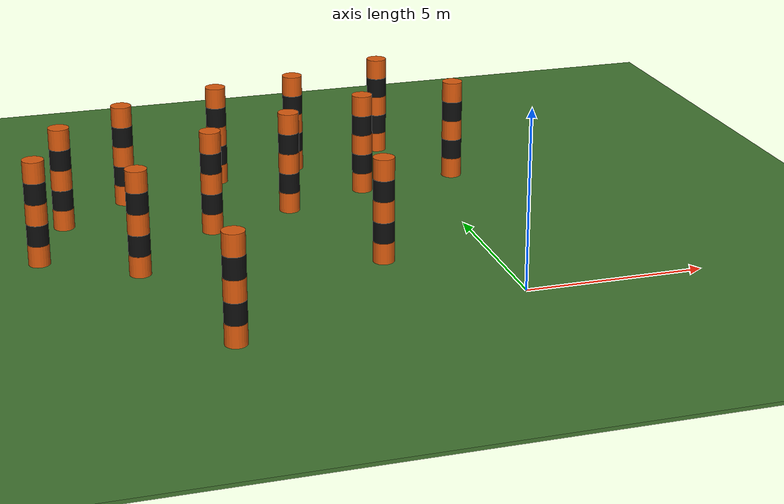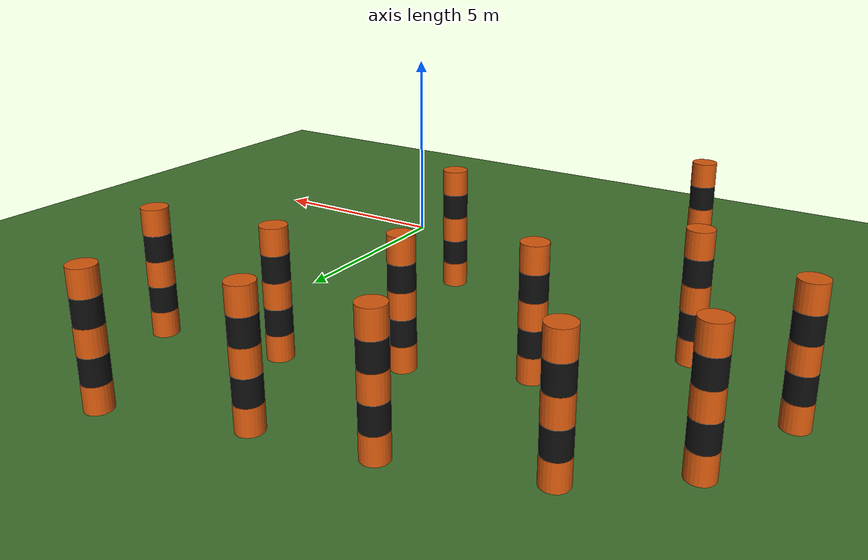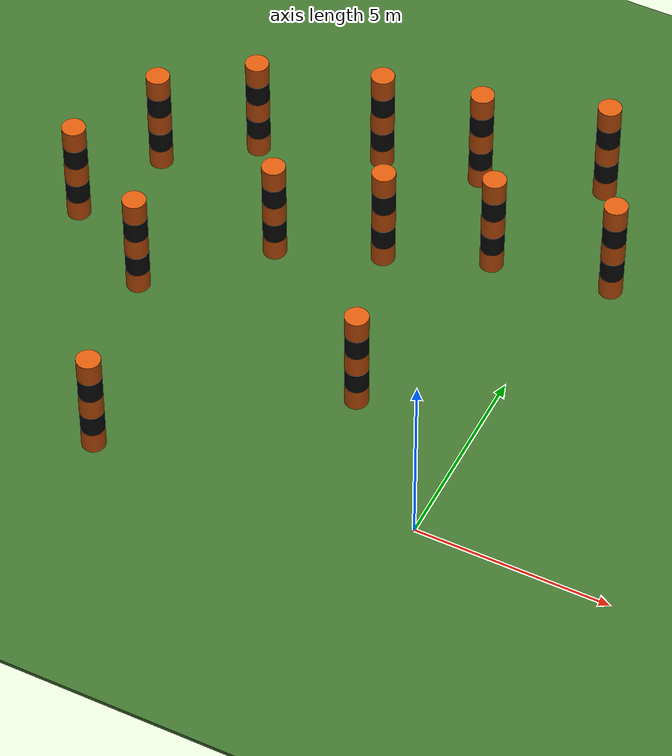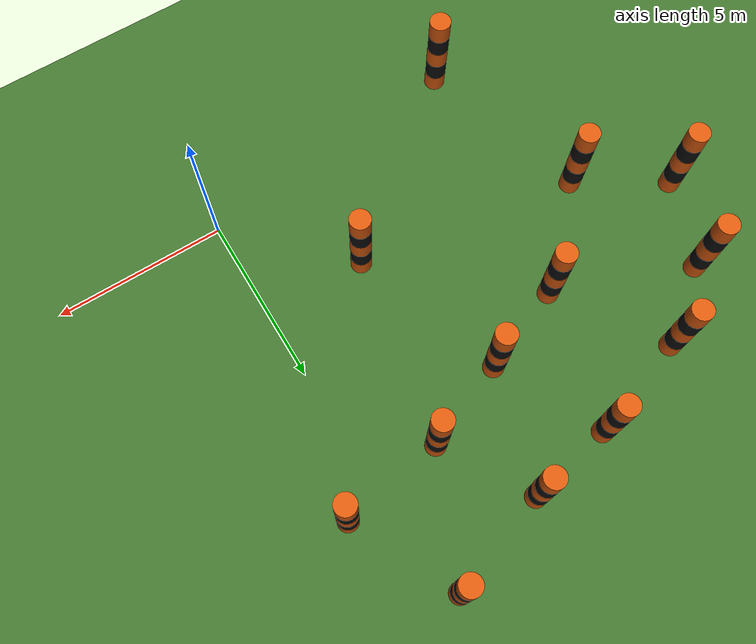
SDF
<sdf version="1.6">
 <world name="medium_forest_goal_13_10_striped_poles">
  <model name="ground">
   <static>1</static>
   <link name="link">
    <collision name="collision"><geometry><box><size>45 35 0.1</size></box></geometry></collision>
    <visual name="visual">
     <geometry><box><size>45 35 0.1</size></box></geometry>
     <material><ambient>0.25 0.45 0.18 1</ambient><diffuse>0.25 0.45 0.18 1</diffuse></material>
    </visual>
   </link>
   <pose>3 2 -0.05 0 0 0</pose>
  </model>
  <model name="striped_obs_01">
   <static>true</static>
   <pose>-12.000 5.500 0 0 0 0</pose>
   <link name="link">
    <collision name="collision">
     <pose>0 0 1.5 0 0 0</pose>
     <geometry><cylinder><radius>0.30</radius><length>3.0</length></cylinder></geometry>
     <surface>
      <contact><ode><kp>1000000</kp><kd>100</kd><max_vel>0.01</max_vel><min_depth>0.001</min_depth></ode></contact>
      <friction><ode><mu>1.0</mu><mu2>1.0</mu2></ode></friction>
     </surface>
    </collision>
    <visual name="band_1">
     <pose>0 0 0.3 0 0 0</pose>
     <geometry><cylinder><radius>0.30</radius><length>0.6</length></cylinder></geometry>
     <material>
      <ambient>0.85 0.35 0.05 1</ambient>
      <diffuse>0.85 0.35 0.05 1</diffuse>
      <specular>0.02 0.02 0.02 1</specular>
     </material>
    </visual>
    <visual name="band_2">
     <pose>0 0 0.9 0 0 0</pose>
     <geometry><cylinder><radius>0.30</radius><length>0.6</length></cylinder></geometry>
     <material>
      <ambient>0.05 0.05 0.05 1</ambient>
      <diffuse>0.05 0.05 0.05 1</diffuse>
      <specular>0.02 0.02 0.02 1</specular>
     </material>
    </visual>
    <visual name="band_3">
     <pose>0 0 1.5 0 0 0</pose>
     <geometry><cylinder><radius>0.30</radius><length>0.6</length></cylinder></geometry>
     <material>
      <ambient>0.85 0.35 0.05 1</ambient>
      <diffuse>0.85 0.35 0.05 1</diffuse>
      <specular>0.02 0.02 0.02 1</specular>
     </material>
    </visual>
    <visual name="band_4">
     <pose>0 0 2.1 0 0 0</pose>
     <geometry><cylinder><radius>0.30</radius><length>0.6</length></cylinder></geometry>
     <material>
      <ambient>0.05 0.05 0.05 1</ambient>
      <diffuse>0.05 0.05 0.05 1</diffuse>
      <specular>0.02 0.02 0.02 1</specular>
     </material>
    </visual>
    <visual name="band_5">
     <pose>0 0 2.7 0 0 0</pose>
     <geometry><cylinder><radius>0.30</radius><length>0.6</length></cylinder></geometry>
     <material>
      <ambient>0.85 0.35 0.05 1</ambient>
      <diffuse>0.85 0.35 0.05 1</diffuse>
      <specular>0.02 0.02 0.02 1</specular>
     </material>
    </visual>
   </link>
  </model>
  <model name="striped_obs_02">
   <static>true</static>
   <pose>-11.000 8.000 0 0 0 0</pose>
   <link name="link">
    <collision name="collision">
     <pose>0 0 1.5 0 0 0</pose>
     <geometry><cylinder><radius>0.30</radius><length>3.0</length></cylinder></geometry>
     <surface>
      <contact><ode><kp>1000000</kp><kd>100</kd><max_vel>0.01</max_vel><min_depth>0.001</min_depth></ode></contact>
      <friction><ode><mu>1.0</mu><mu2>1.0</mu2></ode></friction>
     </surface>
    </collision>
    <visual name="band_1">
     <pose>0 0 0.3 0 0 0</pose>
     <geometry><cylinder><radius>0.30</radius><length>0.6</length></cylinder></geometry>
     <material>
      <ambient>0.85 0.35 0.05 1</ambient>
      <diffuse>0.85 0.35 0.05 1</diffuse>
      <specular>0.02 0.02 0.02 1</specular>
     </material>
    </visual>
    <visual name="band_2">
     <pose>0 0 0.9 0 0 0</pose>
     <geometry><cylinder><radius>0.30</radius><length>0.6</length></cylinder></geometry>
     <material>
      <ambient>0.05 0.05 0.05 1</ambient>
      <diffuse>0.05 0.05 0.05 1</diffuse>
      <specular>0.02 0.02 0.02 1</specular>
     </material>
    </visual>
    <visual name="band_3">
     <pose>0 0 1.5 0 0 0</pose>
     <geometry><cylinder><radius>0.30</radius><length>0.6</length></cylinder></geometry>
     <material>
      <ambient>0.85 0.35 0.05 1</ambient>
      <diffuse>0.85 0.35 0.05 1</diffuse>
      <specular>0.02 0.02 0.02 1</specular>
     </material>
    </visual>
    <visual name="band_4">
     <pose>0 0 2.1 0 0 0</pose>
     <geometry><cylinder><radius>0.30</radius><length>0.6</length></cylinder></geometry>
     <material>
      <ambient>0.05 0.05 0.05 1</ambient>
      <diffuse>0.05 0.05 0.05 1</diffuse>
      <specular>0.02 0.02 0.02 1</specular>
     </material>
    </visual>
    <visual name="band_5">
     <pose>0 0 2.7 0 0 0</pose>
     <geometry><cylinder><radius>0.30</radius><length>0.6</length></cylinder></geometry>
     <material>
      <ambient>0.85 0.35 0.05 1</ambient>
      <diffuse>0.85 0.35 0.05 1</diffuse>
      <specular>0.02 0.02 0.02 1</specular>
     </material>
    </visual>
   </link>
  </model>
  <model name="striped_obs_03">
   <static>true</static>
   <pose>-9.500 4.000 0 0 0 0</pose>
   <link name="link">
    <collision name="collision">
     <pose>0 0 1.5 0 0 0</pose>
     <geometry><cylinder><radius>0.30</radius><length>3.0</length></cylinder></geometry>
     <surface>
      <contact><ode><kp>1000000</kp><kd>100</kd><max_vel>0.01</max_vel><min_depth>0.001</min_depth></ode></contact>
      <friction><ode><mu>1.0</mu><mu2>1.0</mu2></ode></friction>
     </surface>
    </collision>
    <visual name="band_1">
     <pose>0 0 0.3 0 0 0</pose>
     <geometry><cylinder><radius>0.30</radius><length>0.6</length></cylinder></geometry>
     <material>
      <ambient>0.85 0.35 0.05 1</ambient>
      <diffuse>0.85 0.35 0.05 1</diffuse>
      <specular>0.02 0.02 0.02 1</specular>
     </material>
    </visual>
    <visual name="band_2">
     <pose>0 0 0.9 0 0 0</pose>
     <geometry><cylinder><radius>0.30</radius><length>0.6</length></cylinder></geometry>
     <material>
      <ambient>0.05 0.05 0.05 1</ambient>
      <diffuse>0.05 0.05 0.05 1</diffuse>
      <specular>0.02 0.02 0.02 1</specular>
     </material>
    </visual>
    <visual name="band_3">
     <pose>0 0 1.5 0 0 0</pose>
     <geometry><cylinder><radius>0.30</radius><length>0.6</length></cylinder></geometry>
     <material>
      <ambient>0.85 0.35 0.05 1</ambient>
      <diffuse>0.85 0.35 0.05 1</diffuse>
      <specular>0.02 0.02 0.02 1</specular>
     </material>
    </visual>
    <visual name="band_4">
     <pose>0 0 2.1 0 0 0</pose>
     <geometry><cylinder><radius>0.30</radius><length>0.6</length></cylinder></geometry>
     <material>
      <ambient>0.05 0.05 0.05 1</ambient>
      <diffuse>0.05 0.05 0.05 1</diffuse>
      <specular>0.02 0.02 0.02 1</specular>
     </material>
    </visual>
    <visual name="band_5">
     <pose>0 0 2.7 0 0 0</pose>
     <geometry><cylinder><radius>0.30</radius><length>0.6</length></cylinder></geometry>
     <material>
      <ambient>0.85 0.35 0.05 1</ambient>
      <diffuse>0.85 0.35 0.05 1</diffuse>
      <specular>0.02 0.02 0.02 1</specular>
     </material>
    </visual>
   </link>
  </model>
  <model name="striped_obs_04">
   <static>true</static>
   <pose>-9.000 9.500 0 0 0 0</pose>
   <link name="link">
    <collision name="collision">
     <pose>0 0 1.5 0 0 0</pose>
     <geometry><cylinder><radius>0.30</radius><length>3.0</length></cylinder></geometry>
     <surface>
      <contact><ode><kp>1000000</kp><kd>100</kd><max_vel>0.01</max_vel><min_depth>0.001</min_depth></ode></contact>
      <friction><ode><mu>1.0</mu><mu2>1.0</mu2></ode></friction>
     </surface>
    </collision>
    <visual name="band_1">
     <pose>0 0 0.3 0 0 0</pose>
     <geometry><cylinder><radius>0.30</radius><length>0.6</length></cylinder></geometry>
     <material>
      <ambient>0.85 0.35 0.05 1</ambient>
      <diffuse>0.85 0.35 0.05 1</diffuse>
      <specular>0.02 0.02 0.02 1</specular>
     </material>
    </visual>
    <visual name="band_2">
     <pose>0 0 0.9 0 0 0</pose>
     <geometry><cylinder><radius>0.30</radius><length>0.6</length></cylinder></geometry>
     <material>
      <ambient>0.05 0.05 0.05 1</ambient>
      <diffuse>0.05 0.05 0.05 1</diffuse>
      <specular>0.02 0.02 0.02 1</specular>
     </material>
    </visual>
    <visual name="band_3">
     <pose>0 0 1.5 0 0 0</pose>
     <geometry><cylinder><radius>0.30</radius><length>0.6</length></cylinder></geometry>
     <material>
      <ambient>0.85 0.35 0.05 1</ambient>
      <diffuse>0.85 0.35 0.05 1</diffuse>
      <specular>0.02 0.02 0.02 1</specular>
     </material>
    </visual>
    <visual name="band_4">
     <pose>0 0 2.1 0 0 0</pose>
     <geometry><cylinder><radius>0.30</radius><length>0.6</length></cylinder></geometry>
     <material>
      <ambient>0.05 0.05 0.05 1</ambient>
      <diffuse>0.05 0.05 0.05 1</diffuse>
      <specular>0.02 0.02 0.02 1</specular>
     </material>
    </visual>
    <visual name="band_5">
     <pose>0 0 2.7 0 0 0</pose>
     <geometry><cylinder><radius>0.30</radius><length>0.6</length></cylinder></geometry>
     <material>
      <ambient>0.85 0.35 0.05 1</ambient>
      <diffuse>0.85 0.35 0.05 1</diffuse>
      <specular>0.02 0.02 0.02 1</specular>
     </material>
    </visual>
   </link>
  </model>
  <model name="striped_obs_05">
   <static>true</static>
   <pose>-7.000 6.500 0 0 0 0</pose>
   <link name="link">
    <collision name="collision">
     <pose>0 0 1.5 0 0 0</pose>
     <geometry><cylinder><radius>0.30</radius><length>3.0</length></cylinder></geometry>
     <surface>
      <contact><ode><kp>1000000</kp><kd>100</kd><max_vel>0.01</max_vel><min_depth>0.001</min_depth></ode></contact>
      <friction><ode><mu>1.0</mu><mu2>1.0</mu2></ode></friction>
     </surface>
    </collision>
    <visual name="band_1">
     <pose>0 0 0.3 0 0 0</pose>
     <geometry><cylinder><radius>0.30</radius><length>0.6</length></cylinder></geometry>
     <material>
      <ambient>0.85 0.35 0.05 1</ambient>
      <diffuse>0.85 0.35 0.05 1</diffuse>
      <specular>0.02 0.02 0.02 1</specular>
     </material>
    </visual>
    <visual name="band_2">
     <pose>0 0 0.9 0 0 0</pose>
     <geometry><cylinder><radius>0.30</radius><length>0.6</length></cylinder></geometry>
     <material>
      <ambient>0.05 0.05 0.05 1</ambient>
      <diffuse>0.05 0.05 0.05 1</diffuse>
      <specular>0.02 0.02 0.02 1</specular>
     </material>
    </visual>
    <visual name="band_3">
     <pose>0 0 1.5 0 0 0</pose>
     <geometry><cylinder><radius>0.30</radius><length>0.6</length></cylinder></geometry>
     <material>
      <ambient>0.85 0.35 0.05 1</ambient>
      <diffuse>0.85 0.35 0.05 1</diffuse>
      <specular>0.02 0.02 0.02 1</specular>
     </material>
    </visual>
    <visual name="band_4">
     <pose>0 0 2.1 0 0 0</pose>
     <geometry><cylinder><radius>0.30</radius><length>0.6</length></cylinder></geometry>
     <material>
      <ambient>0.05 0.05 0.05 1</ambient>
      <diffuse>0.05 0.05 0.05 1</diffuse>
      <specular>0.02 0.02 0.02 1</specular>
     </material>
    </visual>
    <visual name="band_5">
     <pose>0 0 2.7 0 0 0</pose>
     <geometry><cylinder><radius>0.30</radius><length>0.6</length></cylinder></geometry>
     <material>
      <ambient>0.85 0.35 0.05 1</ambient>
      <diffuse>0.85 0.35 0.05 1</diffuse>
      <specular>0.02 0.02 0.02 1</specular>
     </material>
    </visual>
   </link>
  </model>
  <model name="striped_obs_06">
   <static>true</static>
   <pose>-6.000 10.500 0 0 0 0</pose>
   <link name="link">
    <collision name="collision">
     <pose>0 0 1.5 0 0 0</pose>
     <geometry><cylinder><radius>0.30</radius><length>3.0</length></cylinder></geometry>
     <surface>
      <contact><ode><kp>1000000</kp><kd>100</kd><max_vel>0.01</max_vel><min_depth>0.001</min_depth></ode></contact>
      <friction><ode><mu>1.0</mu><mu2>1.0</mu2></ode></friction>
     </surface>
    </collision>
    <visual name="band_1">
     <pose>0 0 0.3 0 0 0</pose>
     <geometry><cylinder><radius>0.30</radius><length>0.6</length></cylinder></geometry>
     <material>
      <ambient>0.85 0.35 0.05 1</ambient>
      <diffuse>0.85 0.35 0.05 1</diffuse>
      <specular>0.02 0.02 0.02 1</specular>
     </material>
    </visual>
    <visual name="band_2">
     <pose>0 0 0.9 0 0 0</pose>
     <geometry><cylinder><radius>0.30</radius><length>0.6</length></cylinder></geometry>
     <material>
      <ambient>0.05 0.05 0.05 1</ambient>
      <diffuse>0.05 0.05 0.05 1</diffuse>
      <specular>0.02 0.02 0.02 1</specular>
     </material>
    </visual>
    <visual name="band_3">
     <pose>0 0 1.5 0 0 0</pose>
     <geometry><cylinder><radius>0.30</radius><length>0.6</length></cylinder></geometry>
     <material>
      <ambient>0.85 0.35 0.05 1</ambient>
      <diffuse>0.85 0.35 0.05 1</diffuse>
      <specular>0.02 0.02 0.02 1</specular>
     </material>
    </visual>
    <visual name="band_4">
     <pose>0 0 2.1 0 0 0</pose>
     <geometry><cylinder><radius>0.30</radius><length>0.6</length></cylinder></geometry>
     <material>
      <ambient>0.05 0.05 0.05 1</ambient>
      <diffuse>0.05 0.05 0.05 1</diffuse>
      <specular>0.02 0.02 0.02 1</specular>
     </material>
    </visual>
    <visual name="band_5">
     <pose>0 0 2.7 0 0 0</pose>
     <geometry><cylinder><radius>0.30</radius><length>0.6</length></cylinder></geometry>
     <material>
      <ambient>0.85 0.35 0.05 1</ambient>
      <diffuse>0.85 0.35 0.05 1</diffuse>
      <specular>0.02 0.02 0.02 1</specular>
     </material>
    </visual>
   </link>
  </model>
  <model name="striped_obs_07">
   <static>true</static>
   <pose>-4.500 7.500 0 0 0 0</pose>
   <link name="link">
    <collision name="collision">
     <pose>0 0 1.5 0 0 0</pose>
     <geometry><cylinder><radius>0.30</radius><length>3.0</length></cylinder></geometry>
     <surface>
      <contact><ode><kp>1000000</kp><kd>100</kd><max_vel>0.01</max_vel><min_depth>0.001</min_depth></ode></contact>
      <friction><ode><mu>1.0</mu><mu2>1.0</mu2></ode></friction>
     </surface>
    </collision>
    <visual name="band_1">
     <pose>0 0 0.3 0 0 0</pose>
     <geometry><cylinder><radius>0.30</radius><length>0.6</length></cylinder></geometry>
     <material>
      <ambient>0.85 0.35 0.05 1</ambient>
      <diffuse>0.85 0.35 0.05 1</diffuse>
      <specular>0.02 0.02 0.02 1</specular>
     </material>
    </visual>
    <visual name="band_2">
     <pose>0 0 0.9 0 0 0</pose>
     <geometry><cylinder><radius>0.30</radius><length>0.6</length></cylinder></geometry>
     <material>
      <ambient>0.05 0.05 0.05 1</ambient>
      <diffuse>0.05 0.05 0.05 1</diffuse>
      <specular>0.02 0.02 0.02 1</specular>
     </material>
    </visual>
    <visual name="band_3">
     <pose>0 0 1.5 0 0 0</pose>
     <geometry><cylinder><radius>0.30</radius><length>0.6</length></cylinder></geometry>
     <material>
      <ambient>0.85 0.35 0.05 1</ambient>
      <diffuse>0.85 0.35 0.05 1</diffuse>
      <specular>0.02 0.02 0.02 1</specular>
     </material>
    </visual>
    <visual name="band_4">
     <pose>0 0 2.1 0 0 0</pose>
     <geometry><cylinder><radius>0.30</radius><length>0.6</length></cylinder></geometry>
     <material>
      <ambient>0.05 0.05 0.05 1</ambient>
      <diffuse>0.05 0.05 0.05 1</diffuse>
      <specular>0.02 0.02 0.02 1</specular>
     </material>
    </visual>
    <visual name="band_5">
     <pose>0 0 2.7 0 0 0</pose>
     <geometry><cylinder><radius>0.30</radius><length>0.6</length></cylinder></geometry>
     <material>
      <ambient>0.85 0.35 0.05 1</ambient>
      <diffuse>0.85 0.35 0.05 1</diffuse>
      <specular>0.02 0.02 0.02 1</specular>
     </material>
    </visual>
   </link>
  </model>
  <model name="striped_obs_08">
   <static>true</static>
   <pose>-3.500 11.000 0 0 0 0</pose>
   <link name="link">
    <collision name="collision">
     <pose>0 0 1.5 0 0 0</pose>
     <geometry><cylinder><radius>0.30</radius><length>3.0</length></cylinder></geometry>
     <surface>
      <contact><ode><kp>1000000</kp><kd>100</kd><max_vel>0.01</max_vel><min_depth>0.001</min_depth></ode></contact>
      <friction><ode><mu>1.0</mu><mu2>1.0</mu2></ode></friction>
     </surface>
    </collision>
    <visual name="band_1">
     <pose>0 0 0.3 0 0 0</pose>
     <geometry><cylinder><radius>0.30</radius><length>0.6</length></cylinder></geometry>
     <material>
      <ambient>0.85 0.35 0.05 1</ambient>
      <diffuse>0.85 0.35 0.05 1</diffuse>
      <specular>0.02 0.02 0.02 1</specular>
     </material>
    </visual>
    <visual name="band_2">
     <pose>0 0 0.9 0 0 0</pose>
     <geometry><cylinder><radius>0.30</radius><length>0.6</length></cylinder></geometry>
     <material>
      <ambient>0.05 0.05 0.05 1</ambient>
      <diffuse>0.05 0.05 0.05 1</diffuse>
      <specular>0.02 0.02 0.02 1</specular>
     </material>
    </visual>
    <visual name="band_3">
     <pose>0 0 1.5 0 0 0</pose>
     <geometry><cylinder><radius>0.30</radius><length>0.6</length></cylinder></geometry>
     <material>
      <ambient>0.85 0.35 0.05 1</ambient>
      <diffuse>0.85 0.35 0.05 1</diffuse>
      <specular>0.02 0.02 0.02 1</specular>
     </material>
    </visual>
    <visual name="band_4">
     <pose>0 0 2.1 0 0 0</pose>
     <geometry><cylinder><radius>0.30</radius><length>0.6</length></cylinder></geometry>
     <material>
      <ambient>0.05 0.05 0.05 1</ambient>
      <diffuse>0.05 0.05 0.05 1</diffuse>
      <specular>0.02 0.02 0.02 1</specular>
     </material>
    </visual>
    <visual name="band_5">
     <pose>0 0 2.7 0 0 0</pose>
     <geometry><cylinder><radius>0.30</radius><length>0.6</length></cylinder></geometry>
     <material>
      <ambient>0.85 0.35 0.05 1</ambient>
      <diffuse>0.85 0.35 0.05 1</diffuse>
      <specular>0.02 0.02 0.02 1</specular>
     </material>
    </visual>
   </link>
  </model>
  <model name="striped_obs_09">
   <static>true</static>
   <pose>-2.000 8.500 0 0 0 0</pose>
   <link name="link">
    <collision name="collision">
     <pose>0 0 1.5 0 0 0</pose>
     <geometry><cylinder><radius>0.30</radius><length>3.0</length></cylinder></geometry>
     <surface>
      <contact><ode><kp>1000000</kp><kd>100</kd><max_vel>0.01</max_vel><min_depth>0.001</min_depth></ode></contact>
      <friction><ode><mu>1.0</mu><mu2>1.0</mu2></ode></friction>
     </surface>
    </collision>
    <visual name="band_1">
     <pose>0 0 0.3 0 0 0</pose>
     <geometry><cylinder><radius>0.30</radius><length>0.6</length></cylinder></geometry>
     <material>
      <ambient>0.85 0.35 0.05 1</ambient>
      <diffuse>0.85 0.35 0.05 1</diffuse>
      <specular>0.02 0.02 0.02 1</specular>
     </material>
    </visual>
    <visual name="band_2">
     <pose>0 0 0.9 0 0 0</pose>
     <geometry><cylinder><radius>0.30</radius><length>0.6</length></cylinder></geometry>
     <material>
      <ambient>0.05 0.05 0.05 1</ambient>
      <diffuse>0.05 0.05 0.05 1</diffuse>
      <specular>0.02 0.02 0.02 1</specular>
     </material>
    </visual>
    <visual name="band_3">
     <pose>0 0 1.5 0 0 0</pose>
     <geometry><cylinder><radius>0.30</radius><length>0.6</length></cylinder></geometry>
     <material>
      <ambient>0.85 0.35 0.05 1</ambient>
      <diffuse>0.85 0.35 0.05 1</diffuse>
      <specular>0.02 0.02 0.02 1</specular>
     </material>
    </visual>
    <visual name="band_4">
     <pose>0 0 2.1 0 0 0</pose>
     <geometry><cylinder><radius>0.30</radius><length>0.6</length></cylinder></geometry>
     <material>
      <ambient>0.05 0.05 0.05 1</ambient>
      <diffuse>0.05 0.05 0.05 1</diffuse>
      <specular>0.02 0.02 0.02 1</specular>
     </material>
    </visual>
    <visual name="band_5">
     <pose>0 0 2.7 0 0 0</pose>
     <geometry><cylinder><radius>0.30</radius><length>0.6</length></cylinder></geometry>
     <material>
      <ambient>0.85 0.35 0.05 1</ambient>
      <diffuse>0.85 0.35 0.05 1</diffuse>
      <specular>0.02 0.02 0.02 1</specular>
     </material>
    </visual>
   </link>
  </model>
  <model name="striped_obs_10">
   <static>true</static>
   <pose>-0.500 12.000 0 0 0 0</pose>
   <link name="link">
    <collision name="collision">
     <pose>0 0 1.5 0 0 0</pose>
     <geometry><cylinder><radius>0.30</radius><length>3.0</length></cylinder></geometry>
     <surface>
      <contact><ode><kp>1000000</kp><kd>100</kd><max_vel>0.01</max_vel><min_depth>0.001</min_depth></ode></contact>
      <friction><ode><mu>1.0</mu><mu2>1.0</mu2></ode></friction>
     </surface>
    </collision>
    <visual name="band_1">
     <pose>0 0 0.3 0 0 0</pose>
     <geometry><cylinder><radius>0.30</radius><length>0.6</length></cylinder></geometry>
     <material>
      <ambient>0.85 0.35 0.05 1</ambient>
      <diffuse>0.85 0.35 0.05 1</diffuse>
      <specular>0.02 0.02 0.02 1</specular>
     </material>
    </visual>
    <visual name="band_2">
     <pose>0 0 0.9 0 0 0</pose>
     <geometry><cylinder><radius>0.30</radius><length>0.6</length></cylinder></geometry>
     <material>
      <ambient>0.05 0.05 0.05 1</ambient>
      <diffuse>0.05 0.05 0.05 1</diffuse>
      <specular>0.02 0.02 0.02 1</specular>
     </material>
    </visual>
    <visual name="band_3">
     <pose>0 0 1.5 0 0 0</pose>
     <geometry><cylinder><radius>0.30</radius><length>0.6</length></cylinder></geometry>
     <material>
      <ambient>0.85 0.35 0.05 1</ambient>
      <diffuse>0.85 0.35 0.05 1</diffuse>
      <specular>0.02 0.02 0.02 1</specular>
     </material>
    </visual>
    <visual name="band_4">
     <pose>0 0 2.1 0 0 0</pose>
     <geometry><cylinder><radius>0.30</radius><length>0.6</length></cylinder></geometry>
     <material>
      <ambient>0.05 0.05 0.05 1</ambient>
      <diffuse>0.05 0.05 0.05 1</diffuse>
      <specular>0.02 0.02 0.02 1</specular>
     </material>
    </visual>
    <visual name="band_5">
     <pose>0 0 2.7 0 0 0</pose>
     <geometry><cylinder><radius>0.30</radius><length>0.6</length></cylinder></geometry>
     <material>
      <ambient>0.85 0.35 0.05 1</ambient>
      <diffuse>0.85 0.35 0.05 1</diffuse>
      <specular>0.02 0.02 0.02 1</specular>
     </material>
    </visual>
   </link>
  </model>
  <model name="striped_obs_11">
   <static>true</static>
   <pose>1.000 9.000 0 0 0 0</pose>
   <link name="link">
    <collision name="collision">
     <pose>0 0 1.5 0 0 0</pose>
     <geometry><cylinder><radius>0.30</radius><length>3.0</length></cylinder></geometry>
     <surface>
      <contact><ode><kp>1000000</kp><kd>100</kd><max_vel>0.01</max_vel><min_depth>0.001</min_depth></ode></contact>
      <friction><ode><mu>1.0</mu><mu2>1.0</mu2></ode></friction>
     </surface>
    </collision>
    <visual name="band_1">
     <pose>0 0 0.3 0 0 0</pose>
     <geometry><cylinder><radius>0.30</radius><length>0.6</length></cylinder></geometry>
     <material>
      <ambient>0.85 0.35 0.05 1</ambient>
      <diffuse>0.85 0.35 0.05 1</diffuse>
      <specular>0.02 0.02 0.02 1</specular>
     </material>
    </visual>
    <visual name="band_2">
     <pose>0 0 0.9 0 0 0</pose>
     <geometry><cylinder><radius>0.30</radius><length>0.6</length></cylinder></geometry>
     <material>
      <ambient>0.05 0.05 0.05 1</ambient>
      <diffuse>0.05 0.05 0.05 1</diffuse>
      <specular>0.02 0.02 0.02 1</specular>
     </material>
    </visual>
    <visual name="band_3">
     <pose>0 0 1.5 0 0 0</pose>
     <geometry><cylinder><radius>0.30</radius><length>0.6</length></cylinder></geometry>
     <material>
      <ambient>0.85 0.35 0.05 1</ambient>
      <diffuse>0.85 0.35 0.05 1</diffuse>
      <specular>0.02 0.02 0.02 1</specular>
     </material>
    </visual>
    <visual name="band_4">
     <pose>0 0 2.1 0 0 0</pose>
     <geometry><cylinder><radius>0.30</radius><length>0.6</length></cylinder></geometry>
     <material>
      <ambient>0.05 0.05 0.05 1</ambient>
      <diffuse>0.05 0.05 0.05 1</diffuse>
      <specular>0.02 0.02 0.02 1</specular>
     </material>
    </visual>
    <visual name="band_5">
     <pose>0 0 2.7 0 0 0</pose>
     <geometry><cylinder><radius>0.30</radius><length>0.6</length></cylinder></geometry>
     <material>
      <ambient>0.85 0.35 0.05 1</ambient>
      <diffuse>0.85 0.35 0.05 1</diffuse>
      <specular>0.02 0.02 0.02 1</specular>
     </material>
    </visual>
   </link>
  </model>
  <model name="striped_obs_23">
   <static>true</static>
   <pose>-8.000 -1.000 0 0 0 0</pose>
   <link name="link">
    <collision name="collision">
     <pose>0 0 1.5 0 0 0</pose>
     <geometry><cylinder><radius>0.30</radius><length>3.0</length></cylinder></geometry>
     <surface>
      <contact><ode><kp>1000000</kp><kd>100</kd><max_vel>0.01</max_vel><min_depth>0.001</min_depth></ode></contact>
      <friction><ode><mu>1.0</mu><mu2>1.0</mu2></ode></friction>
     </surface>
    </collision>
    <visual name="band_1">
     <pose>0 0 0.3 0 0 0</pose>
     <geometry><cylinder><radius>0.30</radius><length>0.6</length></cylinder></geometry>
     <material>
      <ambient>0.85 0.35 0.05 1</ambient>
      <diffuse>0.85 0.35 0.05 1</diffuse>
      <specular>0.02 0.02 0.02 1</specular>
     </material>
    </visual>
    <visual name="band_2">
     <pose>0 0 0.9 0 0 0</pose>
     <geometry><cylinder><radius>0.30</radius><length>0.6</length></cylinder></geometry>
     <material>
      <ambient>0.05 0.05 0.05 1</ambient>
      <diffuse>0.05 0.05 0.05 1</diffuse>
      <specular>0.02 0.02 0.02 1</specular>
     </material>
    </visual>
    <visual name="band_3">
     <pose>0 0 1.5 0 0 0</pose>
     <geometry><cylinder><radius>0.30</radius><length>0.6</length></cylinder></geometry>
     <material>
      <ambient>0.85 0.35 0.05 1</ambient>
      <diffuse>0.85 0.35 0.05 1</diffuse>
      <specular>0.02 0.02 0.02 1</specular>
     </material>
    </visual>
    <visual name="band_4">
     <pose>0 0 2.1 0 0 0</pose>
     <geometry><cylinder><radius>0.30</radius><length>0.6</length></cylinder></geometry>
     <material>
      <ambient>0.05 0.05 0.05 1</ambient>
      <diffuse>0.05 0.05 0.05 1</diffuse>
      <specular>0.02 0.02 0.02 1</specular>
     </material>
    </visual>
    <visual name="band_5">
     <pose>0 0 2.7 0 0 0</pose>
     <geometry><cylinder><radius>0.30</radius><length>0.6</length></cylinder></geometry>
     <material>
      <ambient>0.85 0.35 0.05 1</ambient>
      <diffuse>0.85 0.35 0.05 1</diffuse>
      <specular>0.02 0.02 0.02 1</specular>
     </material>
    </visual>
   </link>
  </model>
  <model name="striped_obs_24">
   <static>true</static>
   <pose>-3.000 3.000 0 0 0 0</pose>
   <link name="link">
    <collision name="collision">
     <pose>0 0 1.5 0 0 0</pose>
     <geometry><cylinder><radius>0.30</radius><length>3.0</length></cylinder></geometry>
     <surface>
      <contact><ode><kp>1000000</kp><kd>100</kd><max_vel>0.01</max_vel><min_depth>0.001</min_depth></ode></contact>
      <friction><ode><mu>1.0</mu><mu2>1.0</mu2></ode></friction>
     </surface>
    </collision>
    <visual name="band_1">
     <pose>0 0 0.3 0 0 0</pose>
     <geometry><cylinder><radius>0.30</radius><length>0.6</length></cylinder></geometry>
     <material>
      <ambient>0.85 0.35 0.05 1</ambient>
      <diffuse>0.85 0.35 0.05 1</diffuse>
      <specular>0.02 0.02 0.02 1</specular>
     </material>
    </visual>
    <visual name="band_2">
     <pose>0 0 0.9 0 0 0</pose>
     <geometry><cylinder><radius>0.30</radius><length>0.6</length></cylinder></geometry>
     <material>
      <ambient>0.05 0.05 0.05 1</ambient>
      <diffuse>0.05 0.05 0.05 1</diffuse>
      <specular>0.02 0.02 0.02 1</specular>
     </material>
    </visual>
    <visual name="band_3">
     <pose>0 0 1.5 0 0 0</pose>
     <geometry><cylinder><radius>0.30</radius><length>0.6</length></cylinder></geometry>
     <material>
      <ambient>0.85 0.35 0.05 1</ambient>
      <diffuse>0.85 0.35 0.05 1</diffuse>
      <specular>0.02 0.02 0.02 1</specular>
     </material>
    </visual>
    <visual name="band_4">
     <pose>0 0 2.1 0 0 0</pose>
     <geometry><cylinder><radius>0.30</radius><length>0.6</length></cylinder></geometry>
     <material>
      <ambient>0.05 0.05 0.05 1</ambient>
      <diffuse>0.05 0.05 0.05 1</diffuse>
      <specular>0.02 0.02 0.02 1</specular>
     </material>
    </visual>
    <visual name="band_5">
     <pose>0 0 2.7 0 0 0</pose>
     <geometry><cylinder><radius>0.30</radius><length>0.6</length></cylinder></geometry>
     <material>
      <ambient>0.85 0.35 0.05 1</ambient>
      <diffuse>0.85 0.35 0.05 1</diffuse>
      <specular>0.02 0.02 0.02 1</specular>
     </material>
    </visual>
   </link>
  </model>
 </world>
</sdf>
